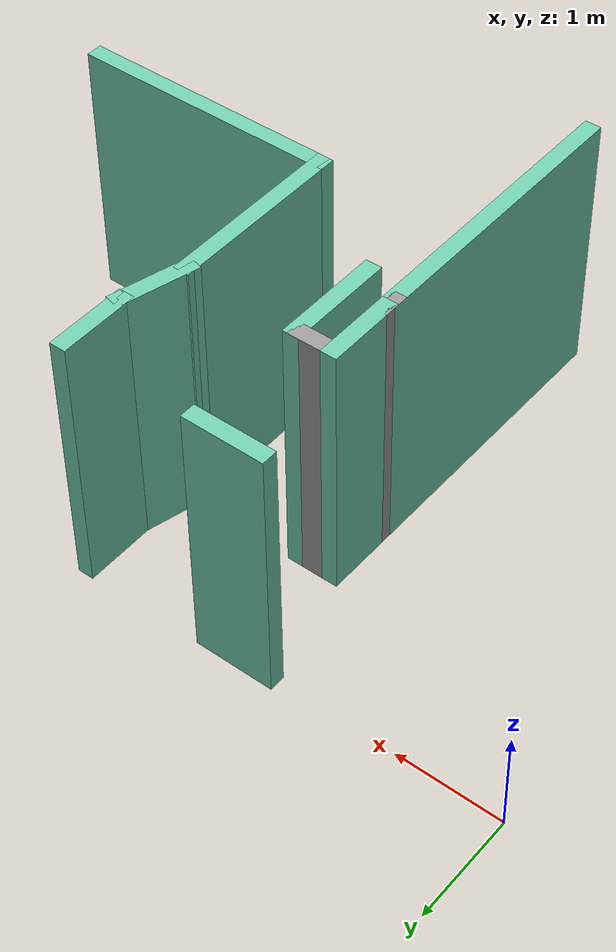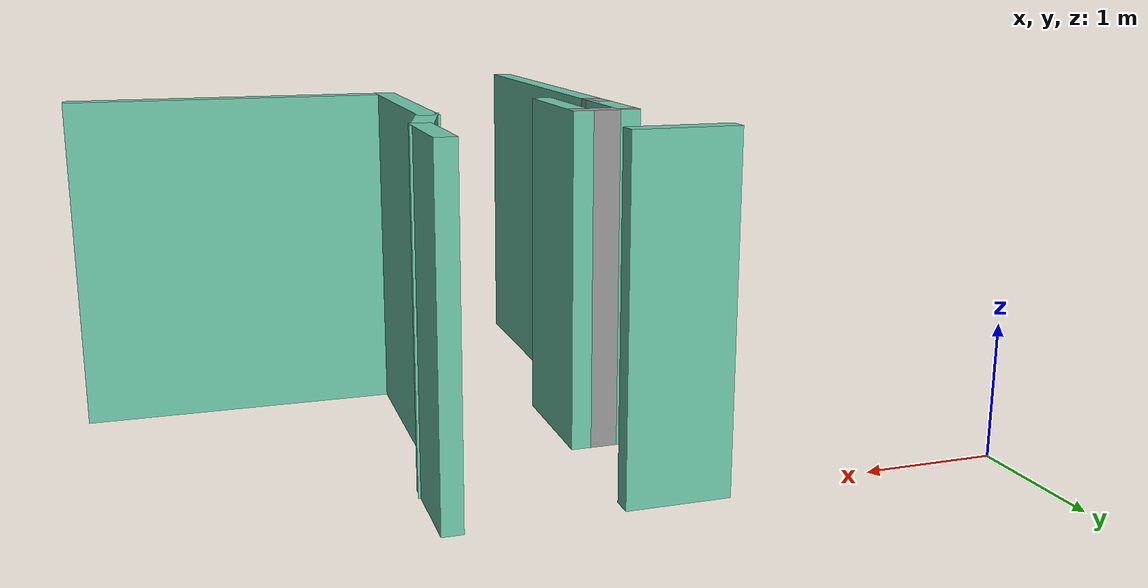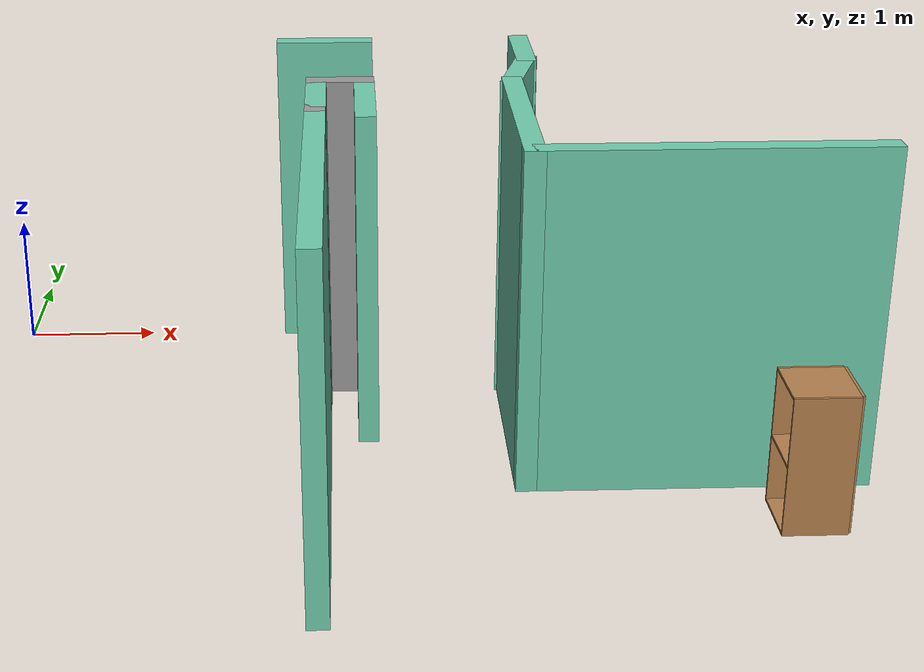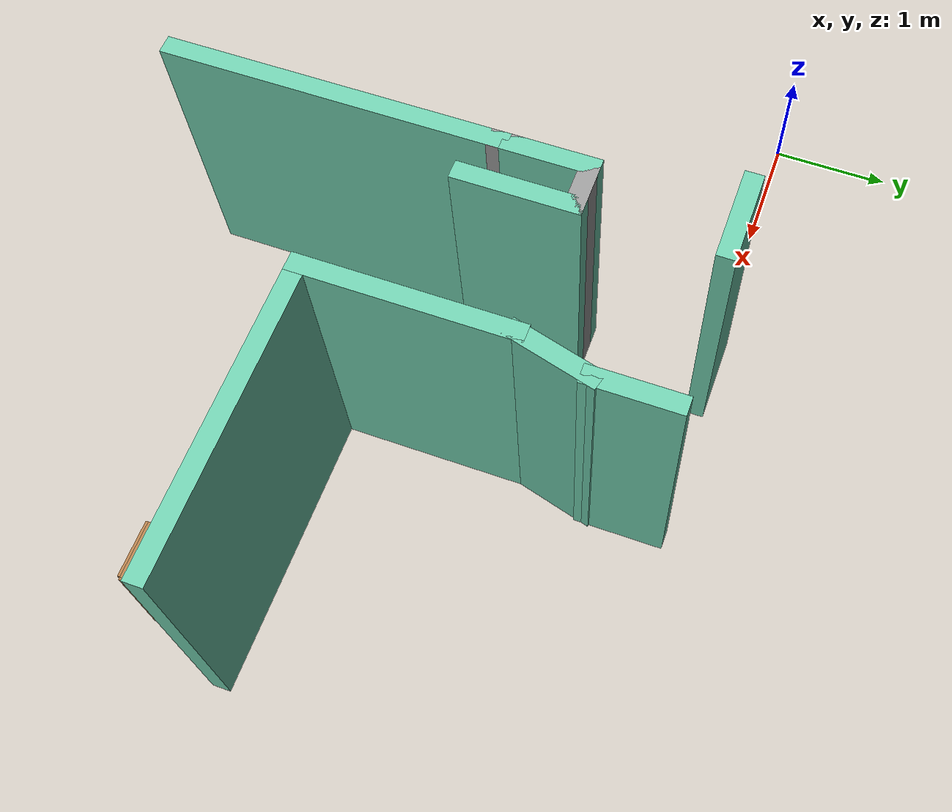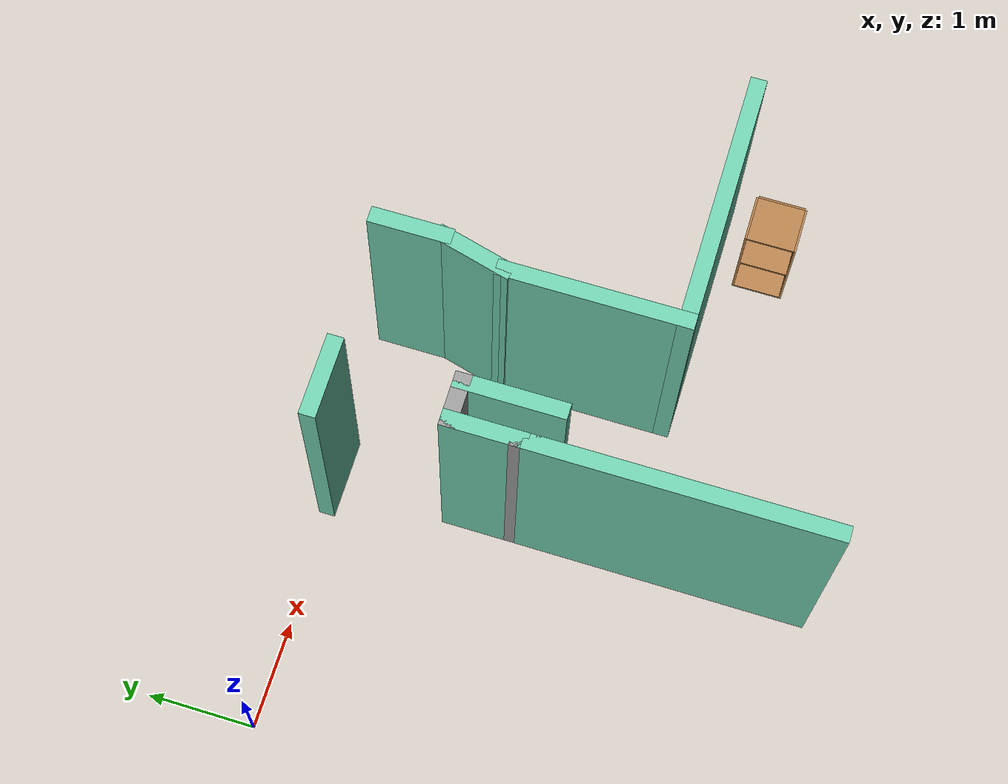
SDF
<sdf version="1.6">
 <world name="default">
  <model name="map_3">
   <pose>0.639107 -0.355311 0 0 -0 0</pose>
   <link name="Wall_100">
    <collision name="Wall_100_Collision">
     <geometry><box><size>1.75 0.15 2.5</size></box></geometry>
     <pose>0 0 1.25 0 -0 0</pose>
    </collision>
    <visual name="Wall_100_Visual">
     <pose>0 0 1.25 0 -0 0</pose>
     <geometry><box><size>1.75 0.15 2.5</size></box></geometry>
     <material>
      <script><uri>file://media/materials/scripts/gazebo.material</uri><name>Gazebo/Grey</name></script>
      <ambient>0.435294 0.796078 0.67451 1</ambient>
     </material>
     <meta><layer>0</layer></meta>
    </visual>
    <pose>3.22626 -1.57739 0 0 -0 1.5708</pose>
   </link>
   <link name="Wall_101">
    <collision name="Wall_101_Collision">
     <geometry><box><size>0.75 0.15 2.5</size></box></geometry>
     <pose>0 0 1.25 0 -0 0</pose>
    </collision>
    <visual name="Wall_101_Visual">
     <pose>0 0 1.25 0 -0 0</pose>
     <geometry><box><size>0.75 0.15 2.5</size></box></geometry>
     <material>
      <script><uri>file://media/materials/scripts/gazebo.material</uri><name>Gazebo/Grey</name></script>
      <ambient>0.435294 0.796078 0.67451 1</ambient>
     </material>
     <meta><layer>0</layer></meta>
    </visual>
    <pose>3.30391 -0.487613 0 0 -0 1.309</pose>
   </link>
   <link name="Wall_102">
    <collision name="Wall_102_Collision">
     <geometry><box><size>0.75 0.15 2.5</size></box></geometry>
     <pose>0 0 1.25 0 -0 0</pose>
    </collision>
    <visual name="Wall_102_Visual">
     <pose>0 0 1.25 0 -0 0</pose>
     <geometry><box><size>0.75 0.15 2.5</size></box></geometry>
     <material>
      <script><uri>file://media/materials/scripts/gazebo.material</uri><name>Gazebo/Grey</name></script>
      <ambient>0.435294 0.796078 0.67451 1</ambient>
     </material>
     <meta><layer>0</layer></meta>
    </visual>
    <pose>3.38155 0.102165 0 0 -0 1.5708</pose>
   </link>
   <link name="Wall_109">
    <collision name="Wall_109_Collision">
     <geometry><box><size>0.75 0.15 2.5</size></box></geometry>
     <pose>0 0 1.25 0 -0 0</pose>
    </collision>
    <visual name="Wall_109_Visual">
     <pose>0 0 1.25 0 -0 0</pose>
     <geometry><box><size>0.75 0.15 2.5</size></box></geometry>
     <material>
      <script><uri>file://media/materials/scripts/gazebo.material</uri><name>Gazebo/Grey</name></script>
      <ambient>0.435294 0.796078 0.67451 1</ambient>
     </material>
     <meta><layer>0</layer></meta>
    </visual>
    <pose>1.84404 0.383757 0 0 -0 3.14159</pose>
   </link>
   <link name="Wall_86">
    <collision name="Wall_86_Collision">
     <geometry><box><size>2.75 0.15 2.5</size></box></geometry>
     <pose>0 0 1.25 0 -0 0</pose>
    </collision>
    <visual name="Wall_86_Visual">
     <pose>0 0 1.25 0 -0 0</pose>
     <geometry><box><size>2.75 0.15 2.5</size></box></geometry>
     <material>
      <script><uri>file://media/materials/scripts/gazebo.material</uri><name>Gazebo/Grey</name></script>
      <ambient>0.435294 0.796078 0.67451 1</ambient>
     </material>
     <meta><layer>0</layer></meta>
    </visual>
    <pose>1.79022 -2.74021 0 0 -0 1.5708</pose>
   </link>
   <link name="Wall_87">
    <collision name="Wall_87_Collision">
     <geometry><box><size>0.25 0.15 2.5</size></box></geometry>
     <pose>0 0 1.25 0 -0 0</pose>
    </collision>
    <visual name="Wall_87_Visual">
     <pose>0 0 1.25 0 -0 0</pose>
     <geometry><box><size>0.25 0.15 2.5</size></box></geometry>
     <material>
      <script><uri>file://media/materials/scripts/gazebo.material</uri><name>Gazebo/Grey</name></script>
      <ambient>1 1 1 1</ambient>
     </material>
     <meta><layer>0</layer></meta>
    </visual>
    <pose>1.79022 -1.39021 0 0 -0 1.5708</pose>
   </link>
   <link name="Wall_88">
    <collision name="Wall_88_Collision">
     <geometry><box><size>0.75 0.15 2.5</size></box></geometry>
     <pose>0 0 1.25 0 -0 0</pose>
    </collision>
    <visual name="Wall_88_Visual">
     <pose>0 0 1.25 0 -0 0</pose>
     <geometry><box><size>0.75 0.15 2.5</size></box></geometry>
     <material>
      <script><uri>file://media/materials/scripts/gazebo.material</uri><name>Gazebo/Grey</name></script>
      <ambient>0.435294 0.796078 0.67451 1</ambient>
     </material>
     <meta><layer>0</layer></meta>
    </visual>
    <pose>1.79022 -1.04021 0 0 -0 1.5708</pose>
   </link>
   <link name="Wall_89">
    <collision name="Wall_89_Collision">
     <geometry><box><size>0.5 0.15 2.5</size></box></geometry>
     <pose>0 0 1.25 0 -0 0</pose>
    </collision>
    <visual name="Wall_89_Visual">
     <pose>0 0 1.25 0 -0 0</pose>
     <geometry><box><size>0.5 0.15 2.5</size></box></geometry>
     <material>
      <script><uri>file://media/materials/scripts/gazebo.material</uri><name>Gazebo/Grey</name></script>
      <ambient>1 1 1 1</ambient>
     </material>
     <meta><layer>0</layer></meta>
    </visual>
    <pose>1.96522 -0.740211 0 0 -0 0</pose>
   </link>
   <link name="Wall_90">
    <collision name="Wall_90_Collision">
     <geometry><box><size>1 0.15 2.5</size></box></geometry>
     <pose>0 0 1.25 0 -0 0</pose>
    </collision>
    <visual name="Wall_90_Visual">
     <pose>0 0 1.25 0 -0 0</pose>
     <geometry><box><size>1 0.15 2.5</size></box></geometry>
     <material>
      <script><uri>file://media/materials/scripts/gazebo.material</uri><name>Gazebo/Grey</name></script>
      <ambient>0.435294 0.796078 0.67451 1</ambient>
     </material>
     <meta><layer>0</layer></meta>
    </visual>
    <pose>2.14022 -1.16521 0 0 -0 -1.5708</pose>
   </link>
   <link name="Wall_99">
    <collision name="Wall_99_Collision">
     <geometry><box><size>2.5 0.15 2.5</size></box></geometry>
     <pose>0 0 1.25 0 -0 0</pose>
    </collision>
    <visual name="Wall_99_Visual">
     <pose>0 0 1.25 0 -0 0</pose>
     <geometry><box><size>2.5 0.15 2.5</size></box></geometry>
     <material>
      <script><uri>file://media/materials/scripts/gazebo.material</uri><name>Gazebo/Grey</name></script>
      <ambient>0.435294 0.796078 0.67451 1</ambient>
     </material>
     <meta><layer>0</layer></meta>
    </visual>
    <pose>4.40126 -2.37739 0 0 -0 3.14159</pose>
   </link>
   <static>1</static>
  </model>
  <model name="cabinet_4">
   <static>1</static>
   <link name="cabinet_bottom_plate">
    <inertial>
     <pose>0 0 -1 0 -0 0</pose>
     <inertia><ixx>2.05</ixx><ixy>0</ixy><ixz>0</ixz><iyy>2.05</iyy><iyz>0</iyz><izz>2.05</izz></inertia>
     <mass>25</mass>
    </inertial>
    <collision name="cabinet_bottom_plate_geom">
     <pose>0 0 0.01 0 -0 0</pose>
     <geometry><box><size>0.45 0.45 0.02</size></box></geometry>
    </collision>
    <visual name="cabinet_bottom_plate_geom_visual">
     <pose>0 0 0.01 0 -0 0</pose>
     <geometry><box><size>0.45 0.45 0.02</size></box></geometry>
     <material>
      <script><uri>file://media/materials/scripts/gazebo.material</uri><name>Gazebo/Wood</name></script>
     </material>
    </visual>
    <collision name="cabinet_bottom_plate_geom_cabinet_back_plate">
     <pose>0.235 0 0.51 0 -0 0</pose>
     <geometry><box><size>0.02 0.45 1.02</size></box></geometry>
    </collision>
    <visual name="cabinet_bottom_plate_geom_cabinet_back_plate_visual">
     <pose>0.235 0 0.51 0 -0 0</pose>
     <geometry><box><size>0.02 0.45 1.02</size></box></geometry>
     <material>
      <script><uri>file://media/materials/scripts/gazebo.material</uri><name>Gazebo/Wood</name></script>
     </material>
    </visual>
    <collision name="cabinet_bottom_plate_geom_cabinet_left_plate">
     <pose>0 0.235 0.51 0 -0 0</pose>
     <geometry><box><size>0.45 0.02 1.02</size></box></geometry>
    </collision>
    <visual name="cabinet_bottom_plate_geom_cabinet_left_plate_visual">
     <pose>0 0.235 0.51 0 -0 0</pose>
     <geometry><box><size>0.45 0.02 1.02</size></box></geometry>
     <material>
      <script><uri>file://media/materials/scripts/gazebo.material</uri><name>Gazebo/Wood</name></script>
     </material>
    </visual>
    <collision name="cabinet_bottom_plate_geom_cabinet_middle_plate">
     <pose>0 0 0.51 0 -0 0</pose>
     <geometry><box><size>0.45 0.45 0.02</size></box></geometry>
    </collision>
    <visual name="cabinet_bottom_plate_geom_cabinet_middle_plate_visual">
     <pose>0 0 0.51 0 -0 0</pose>
     <geometry><box><size>0.45 0.45 0.02</size></box></geometry>
     <material>
      <script><uri>file://media/materials/scripts/gazebo.material</uri><name>Gazebo/Wood</name></script>
     </material>
    </visual>
    <collision name="cabinet_bottom_plate_geom_cabinet_right_plate">
     <pose>0 -0.235 0.51 0 -0 0</pose>
     <geometry><box><size>0.45 0.02 1.02</size></box></geometry>
    </collision>
    <visual name="cabinet_bottom_plate_geom_cabinet_right_plate_visual">
     <pose>0 -0.235 0.51 0 -0 0</pose>
     <geometry><box><size>0.45 0.02 1.02</size></box></geometry>
     <material>
      <script><uri>file://media/materials/scripts/gazebo.material</uri><name>Gazebo/Wood</name></script>
     </material>
    </visual>
    <collision name="cabinet_bottom_plate_geom_cabinet_top_plate">
     <pose>0 0 1.01 0 -0 0</pose>
     <geometry><box><size>0.45 0.45 0.02</size></box></geometry>
    </collision>
    <visual name="cabinet_bottom_plate_geom_cabinet_top_plate_visual">
     <pose>0 0 1.01 0 -0 0</pose>
     <geometry><box><size>0.45 0.45 0.02</size></box></geometry>
     <material>
      <script><uri>file://media/materials/scripts/gazebo.material</uri><name>Gazebo/Wood</name></script>
     </material>
    </visual>
   </link>
   <pose>5.73763 -3.23328 0 0 -0 0</pose>
  </model>
 </world>
</sdf>
